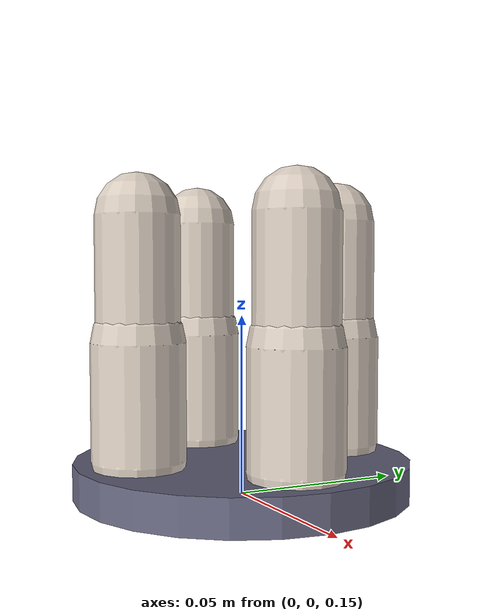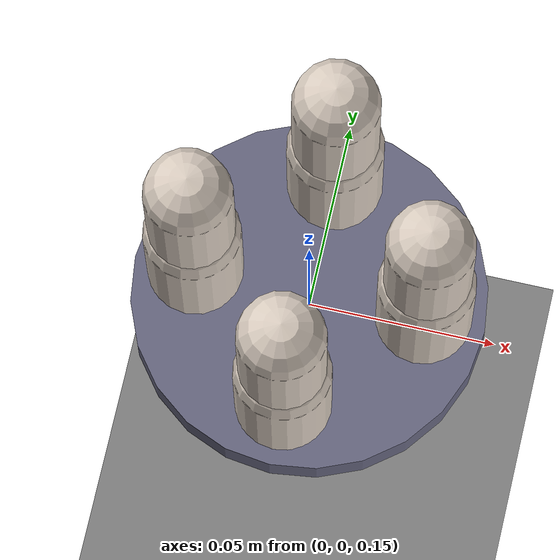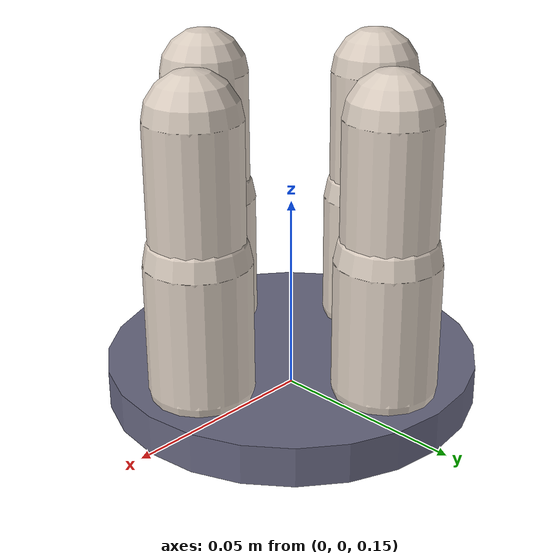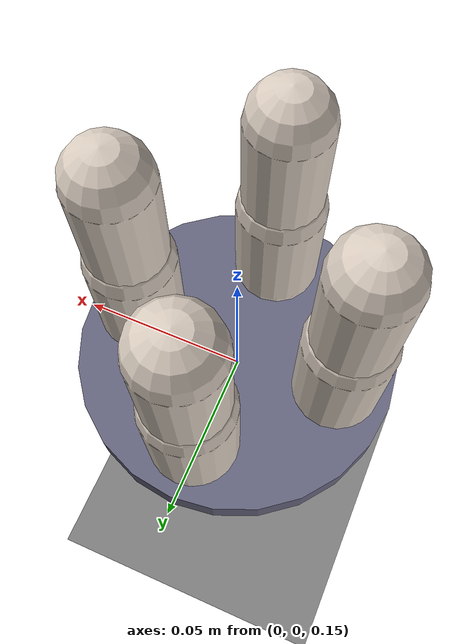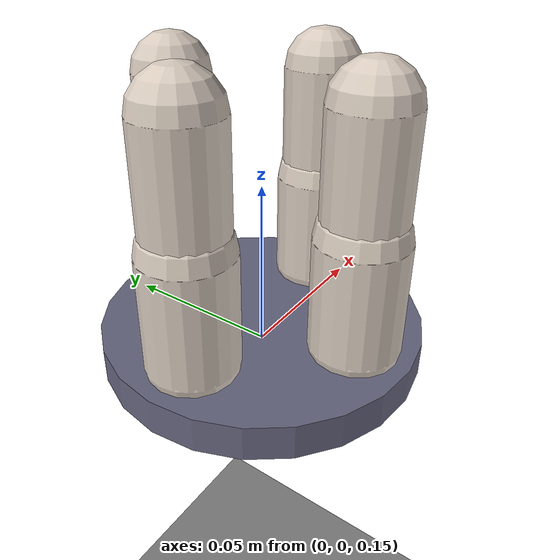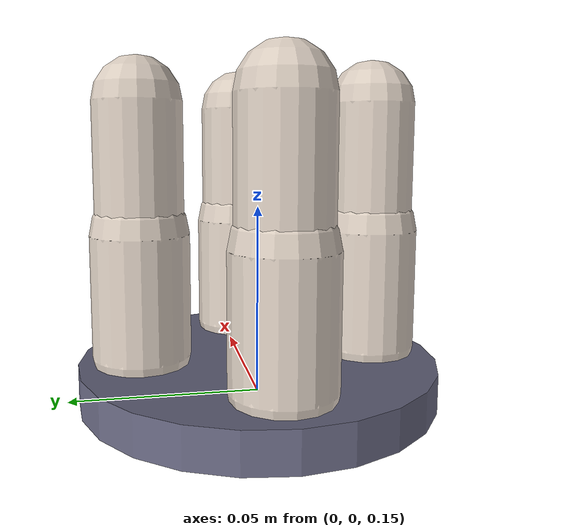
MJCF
<?xml version="1.0" encoding="utf-8"?>
<mujoco model="OF-20260129-0001">
  <compiler angle="radian" autolimits="true" meshdir="meshes"/>
  <option timestep="0.002" iterations="50" solver="Newton" tolerance="1e-10">
    <flag warmstart="enable"/>
  </option>
  <default>
    <default class="gripper">
      <geom type="capsule" condim="4" friction="1.0 0.005 0.0001" rgba="0.85 0.8 0.75 1" margin="0.001"/>
      <joint type="hinge" limited="true" range="-1.57 1.57" stiffness="0.05" damping="0.12" armature="0.001"/>
    </default>
    <default class="palm"><geom type="cylinder" rgba="0.4 0.4 0.5 1" friction="1.0 0.005 0.0001"/>
    </default>
  </default>
  <worldbody>
    <geom name="ground" type="plane" size="0.5 0.5 0.1" condim="3"/>
    <light pos="0 0 1.5" dir="0 0 -1" directional="true"/>
    <body name="palm" pos="0 0 0.15">
      <geom class="palm" name="palm_geom" size="0.0470 0.0050" pos="0 0 0.0050" />
      <body name="finger_0_base" pos="0.0306 0.0000 0.0100">
        <joint class="gripper" name="finger_0_base_joint" axis="0 1 0" stiffness="0.0450" damping="0.1080"/>
        <site name="finger_0_site_0" pos="0 0 0.002" size="0.002"/>
        <geom class="gripper" name="finger_0_seg_0" fromto="0 0 0.0020 0 0 0.0335" size="0.0127" />
        <body name="finger_0_seg_1" pos="0 0 0.0335">
          <joint class="gripper" name="finger_0_joint_1" axis="0 1 0" stiffness="0.0375" damping="0.0840"/>
          <geom class="gripper" name="finger_0_seg_1_geom" fromto="0 0 0.001 0 0 0.0335" size="0.0113" />
          <site name="finger_0_site_1" pos="0 0 0.0168" size="0.002"/>
        </body>
        <body name="finger_0_seg_2" pos="0 0 0.0335">
          <joint class="gripper" name="finger_0_joint_2" axis="0 1 0" stiffness="0.0300" damping="0.0660"/>
          <geom class="gripper" name="finger_0_seg_2_geom" fromto="0 0 0.001 0 0 0.0335" size="0.0100" />
          <site name="finger_0_site_2" pos="0 0 0.0168" size="0.002"/>
        </body>
        <body name="finger_0_seg_3" pos="0 0 0.0335">
          <joint class="gripper" name="finger_0_joint_3" axis="0 1 0" stiffness="0.0250" damping="0.0540"/>
          <geom class="gripper" name="finger_0_seg_3_geom" fromto="0 0 0.001 0 0 0.0335" size="0.0086" />
          <site name="finger_0_site_3" pos="0 0 0.0168" size="0.002"/>
        </body>
      </body>
      <body name="finger_1_base" pos="0.0000 0.0306 0.0100">
        <joint class="gripper" name="finger_1_base_joint" axis="0 1 0" stiffness="0.0450" damping="0.1080"/>
        <site name="finger_1_site_0" pos="0 0 0.002" size="0.002"/>
        <geom class="gripper" name="finger_1_seg_0" fromto="0 0 0.0020 0 0 0.0335" size="0.0127" />
        <body name="finger_1_seg_1" pos="0 0 0.0335">
          <joint class="gripper" name="finger_1_joint_1" axis="0 1 0" stiffness="0.0375" damping="0.0840"/>
          <geom class="gripper" name="finger_1_seg_1_geom" fromto="0 0 0.001 0 0 0.0335" size="0.0113" />
          <site name="finger_1_site_1" pos="0 0 0.0168" size="0.002"/>
        </body>
        <body name="finger_1_seg_2" pos="0 0 0.0335">
          <joint class="gripper" name="finger_1_joint_2" axis="0 1 0" stiffness="0.0300" damping="0.0660"/>
          <geom class="gripper" name="finger_1_seg_2_geom" fromto="0 0 0.001 0 0 0.0335" size="0.0100" />
          <site name="finger_1_site_2" pos="0 0 0.0168" size="0.002"/>
        </body>
        <body name="finger_1_seg_3" pos="0 0 0.0335">
          <joint class="gripper" name="finger_1_joint_3" axis="0 1 0" stiffness="0.0250" damping="0.0540"/>
          <geom class="gripper" name="finger_1_seg_3_geom" fromto="0 0 0.001 0 0 0.0335" size="0.0086" />
          <site name="finger_1_site_3" pos="0 0 0.0168" size="0.002"/>
        </body>
      </body>
      <body name="finger_2_base" pos="-0.0306 0.0000 0.0100">
        <joint class="gripper" name="finger_2_base_joint" axis="0 1 0" stiffness="0.0450" damping="0.1080"/>
        <site name="finger_2_site_0" pos="0 0 0.002" size="0.002"/>
        <geom class="gripper" name="finger_2_seg_0" fromto="0 0 0.0020 0 0 0.0335" size="0.0127" />
        <body name="finger_2_seg_1" pos="0 0 0.0335">
          <joint class="gripper" name="finger_2_joint_1" axis="0 1 0" stiffness="0.0375" damping="0.0840"/>
          <geom class="gripper" name="finger_2_seg_1_geom" fromto="0 0 0.001 0 0 0.0335" size="0.0113" />
          <site name="finger_2_site_1" pos="0 0 0.0168" size="0.002"/>
        </body>
        <body name="finger_2_seg_2" pos="0 0 0.0335">
          <joint class="gripper" name="finger_2_joint_2" axis="0 1 0" stiffness="0.0300" damping="0.0660"/>
          <geom class="gripper" name="finger_2_seg_2_geom" fromto="0 0 0.001 0 0 0.0335" size="0.0100" />
          <site name="finger_2_site_2" pos="0 0 0.0168" size="0.002"/>
        </body>
        <body name="finger_2_seg_3" pos="0 0 0.0335">
          <joint class="gripper" name="finger_2_joint_3" axis="0 1 0" stiffness="0.0250" damping="0.0540"/>
          <geom class="gripper" name="finger_2_seg_3_geom" fromto="0 0 0.001 0 0 0.0335" size="0.0086" />
          <site name="finger_2_site_3" pos="0 0 0.0168" size="0.002"/>
        </body>
      </body>
      <body name="finger_3_base" pos="-0.0000 -0.0306 0.0100">
        <joint class="gripper" name="finger_3_base_joint" axis="0 1 0" stiffness="0.0450" damping="0.1080"/>
        <site name="finger_3_site_0" pos="0 0 0.002" size="0.002"/>
        <geom class="gripper" name="finger_3_seg_0" fromto="0 0 0.0020 0 0 0.0335" size="0.0127" />
        <body name="finger_3_seg_1" pos="0 0 0.0335">
          <joint class="gripper" name="finger_3_joint_1" axis="0 1 0" stiffness="0.0375" damping="0.0840"/>
          <geom class="gripper" name="finger_3_seg_1_geom" fromto="0 0 0.001 0 0 0.0335" size="0.0113" />
          <site name="finger_3_site_1" pos="0 0 0.0168" size="0.002"/>
        </body>
        <body name="finger_3_seg_2" pos="0 0 0.0335">
          <joint class="gripper" name="finger_3_joint_2" axis="0 1 0" stiffness="0.0300" damping="0.0660"/>
          <geom class="gripper" name="finger_3_seg_2_geom" fromto="0 0 0.001 0 0 0.0335" size="0.0100" />
          <site name="finger_3_site_2" pos="0 0 0.0168" size="0.002"/>
        </body>
        <body name="finger_3_seg_3" pos="0 0 0.0335">
          <joint class="gripper" name="finger_3_joint_3" axis="0 1 0" stiffness="0.0250" damping="0.0540"/>
          <geom class="gripper" name="finger_3_seg_3_geom" fromto="0 0 0.001 0 0 0.0335" size="0.0086" />
          <site name="finger_3_site_3" pos="0 0 0.0168" size="0.002"/>
        </body>
      </body>
    </body>
  </worldbody>
  <tendon>
    <spatial name="finger_0_flexor" limited="true" range="0 0.15" width="0.002" frictionloss="0.1">
      <site site="finger_0_site_0"/>
      <site site="finger_0_site_1"/>
      <site site="finger_0_site_2"/>
      <site site="finger_0_site_3"/>
    </spatial>
    <spatial name="finger_0_extensor" limited="true" range="0 0.15" width="0.002" frictionloss="0.1">
      <site site="finger_0_site_3"/>
      <site site="finger_0_site_2"/>
      <site site="finger_0_site_1"/>
      <site site="finger_0_site_0"/>
    </spatial>
    <spatial name="finger_1_flexor" limited="true" range="0 0.15" width="0.002" frictionloss="0.1">
      <site site="finger_1_site_0"/>
      <site site="finger_1_site_1"/>
      <site site="finger_1_site_2"/>
      <site site="finger_1_site_3"/>
    </spatial>
    <spatial name="finger_1_extensor" limited="true" range="0 0.15" width="0.002" frictionloss="0.1">
      <site site="finger_1_site_3"/>
      <site site="finger_1_site_2"/>
      <site site="finger_1_site_1"/>
      <site site="finger_1_site_0"/>
    </spatial>
    <spatial name="finger_2_flexor" limited="true" range="0 0.15" width="0.002" frictionloss="0.1">
      <site site="finger_2_site_0"/>
      <site site="finger_2_site_1"/>
      <site site="finger_2_site_2"/>
      <site site="finger_2_site_3"/>
    </spatial>
    <spatial name="finger_2_extensor" limited="true" range="0 0.15" width="0.002" frictionloss="0.1">
      <site site="finger_2_site_3"/>
      <site site="finger_2_site_2"/>
      <site site="finger_2_site_1"/>
      <site site="finger_2_site_0"/>
    </spatial>
    <spatial name="finger_3_flexor" limited="true" range="0 0.15" width="0.002" frictionloss="0.1">
      <site site="finger_3_site_0"/>
      <site site="finger_3_site_1"/>
      <site site="finger_3_site_2"/>
      <site site="finger_3_site_3"/>
    </spatial>
    <spatial name="finger_3_extensor" limited="true" range="0 0.15" width="0.002" frictionloss="0.1">
      <site site="finger_3_site_3"/>
      <site site="finger_3_site_2"/>
      <site site="finger_3_site_1"/>
      <site site="finger_3_site_0"/>
    </spatial>
  </tendon>
  <actuator>
    <motor name="finger_0_flexor_motor" tendon="finger_0_flexor" gear="50" ctrllimited="true" ctrlrange="0 1"/>
    <motor name="finger_0_extensor_motor" tendon="finger_0_extensor" gear="25" ctrllimited="true" ctrlrange="0 0.5"/>
    <motor name="finger_1_flexor_motor" tendon="finger_1_flexor" gear="50" ctrllimited="true" ctrlrange="0 1"/>
    <motor name="finger_1_extensor_motor" tendon="finger_1_extensor" gear="25" ctrllimited="true" ctrlrange="0 0.5"/>
    <motor name="finger_2_flexor_motor" tendon="finger_2_flexor" gear="50" ctrllimited="true" ctrlrange="0 1"/>
    <motor name="finger_2_extensor_motor" tendon="finger_2_extensor" gear="25" ctrllimited="true" ctrlrange="0 0.5"/>
    <motor name="finger_3_flexor_motor" tendon="finger_3_flexor" gear="50" ctrllimited="true" ctrlrange="0 1"/>
    <motor name="finger_3_extensor_motor" tendon="finger_3_extensor" gear="25" ctrllimited="true" ctrlrange="0 0.5"/>
  </actuator>
  <sensor>
    <jointpos name="finger_0_pos" joint="finger_0_base_joint"/>
    <jointvel name="finger_0_vel" joint="finger_0_base_joint"/>
    <tendonpos name="finger_0_flexor_len" tendon="finger_0_flexor"/>
    <jointpos name="finger_1_pos" joint="finger_1_base_joint"/>
    <jointvel name="finger_1_vel" joint="finger_1_base_joint"/>
    <tendonpos name="finger_1_flexor_len" tendon="finger_1_flexor"/>
    <jointpos name="finger_2_pos" joint="finger_2_base_joint"/>
    <jointvel name="finger_2_vel" joint="finger_2_base_joint"/>
    <tendonpos name="finger_2_flexor_len" tendon="finger_2_flexor"/>
    <jointpos name="finger_3_pos" joint="finger_3_base_joint"/>
    <jointvel name="finger_3_vel" joint="finger_3_base_joint"/>
    <tendonpos name="finger_3_flexor_len" tendon="finger_3_flexor"/>
  </sensor>
</mujoco>
